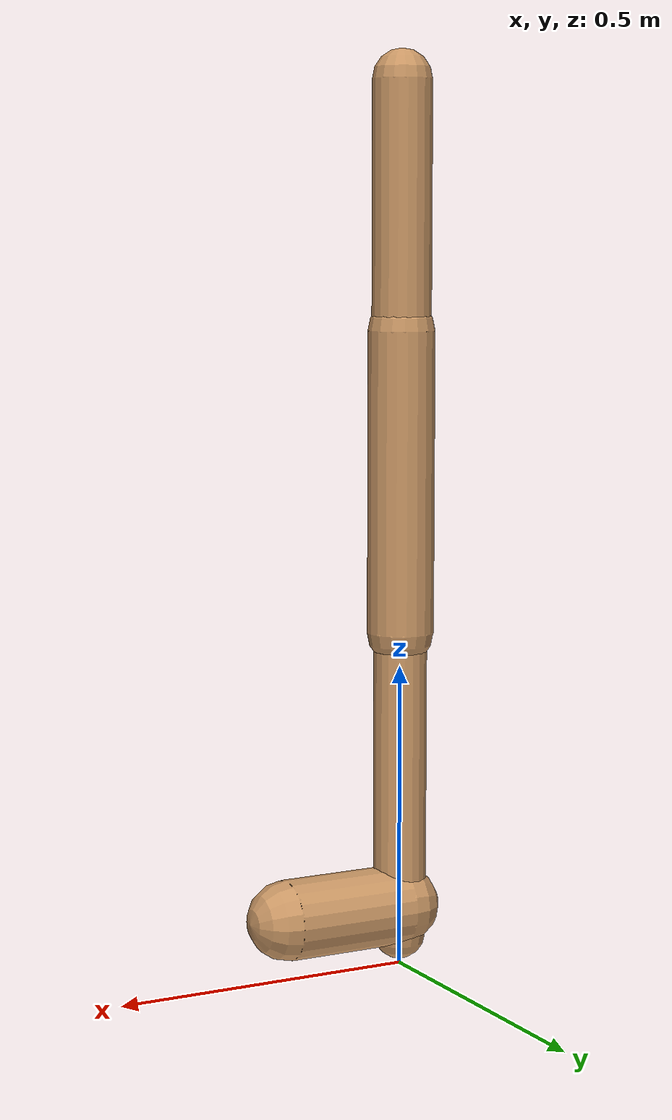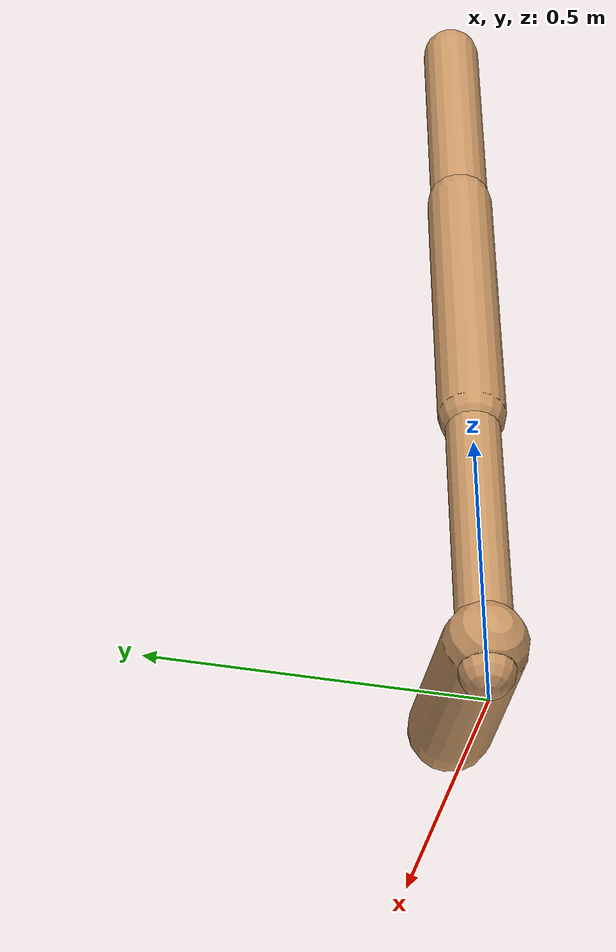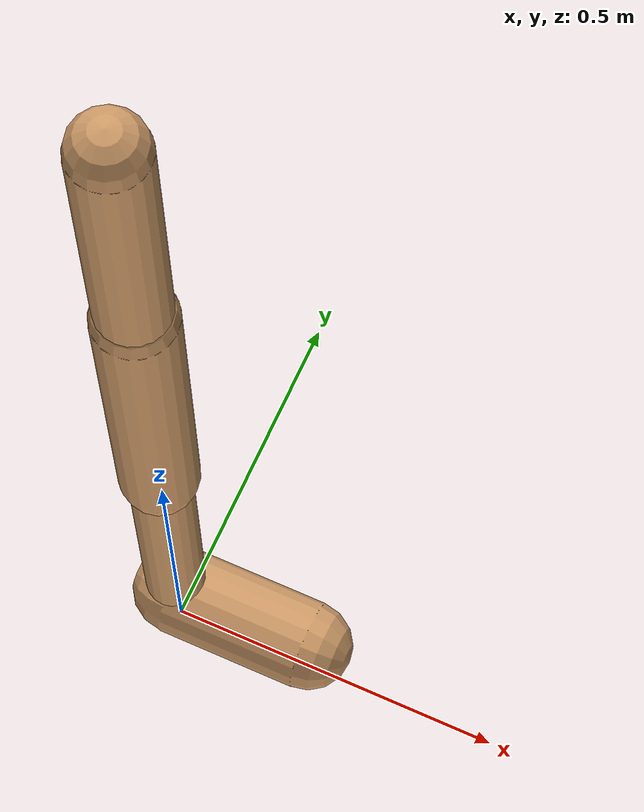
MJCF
<mujoco model="walker2d">
  <compiler angle="degree" coordinate="global" inertiafromgeom="true" />
  <default>
    <joint armature="0.01" damping=".1" limited="true" />
    <geom conaffinity="0" condim="3" contype="1" density="1000" friction="0.8 .1 .1" rgba="0.8 0.6 .4 1" />
  </default>
  <option integrator="RK4" timestep="0.002" />
  <worldbody>

    <body name="torso" pos="0 0 0.08991235250476087">
      <joint armature="0" axis="1 0 0" damping="0" limited="false" name="ignorex" pos="0 0 0" stiffness="0" type="slide" />
      <joint armature="0" axis="0 0 1" damping="0" limited="false" name="ignorez" pos="0 0 0" ref="1.25" stiffness="0" type="slide" />
      <joint armature="0" axis="0 1 0" damping="0" limited="false" name="ignorey" pos="0 0 0" stiffness="0" type="hinge" />
      <geom fromto="0 0 1.45 0 0 1.05" name="torso_geom" size="0.04852681684497703" type="capsule" />
      <body name="thigh">
        <joint axis="0 -1 0" name="thigh_joint" pos="0 0 1.05" range="-150 0" type="hinge" />
        <geom fromto="0.0 0.0 1.05 0.0 0.0 0.5574099382872185" name="thigh_geom" size="0.054610090040732764" type="capsule" />
        <body name="leg" pos="0.0 0.0 -0.04259006171278146">
          <joint axis="0 -1 0" name="leg_joint" pos="0 0 0.6" range="-150 0" type="hinge" />
          <geom fromto="0.0 0.0 0.6 0.0 0.0 0.052677709208020604" name="leg_geom" size="0.04368807203258621" type="capsule" />
          <body name="foot" pos="0.0 0.0 -0.0473222907919794">
            <joint axis="0 -1 0" name="foot_joint" pos="0 0 0.1" range="-45 45" type="hinge" />
            <geom fromto="-0.0 0.0 0.1 0.20909675413630882 0.0 0.1" name="foot_geom" size="0.0653257634360323" type="capsule" />
          </body>
        </body>
      </body>

      <body name="thigh_left">
        <joint axis="0 -1 0" name="thigh_left_joint" pos="0 0 1.05" range="-150 0" type="hinge" />
        <geom fromto="0.0 0.0 1.05 0.0 0.0 0.5574099382872185" name="thigh_left_geom" rgba=".7 .3 .6 1" size="0.054610090040732764" type="capsule" />
        <body name="leg_left" pos="0.0 0.0 -0.04259006171278146">
          <joint axis="0 -1 0" name="leg_left_joint" pos="0 0 0.6" range="-150 0" type="hinge" />
          <geom fromto="0.0 0.0 0.6 0.0 0.0 0.052677709208020604" name="leg_left_geom" rgba=".7 .3 .6 1" size="0.04368807203258621" type="capsule" />
          <body name="foot_left" pos="0.0 0.0 -0.0473222907919794">
            <joint axis="0 -1 0" name="foot_left_joint" pos="0 0 0.1" range="-45 45" type="hinge" />
            <geom fromto="-0.0 0.0 0.1 0.20909675413630882 0.0 0.1" name="foot_left_geom" rgba=".7 .3 .6 1" size="0.0653257634360323" type="capsule" />
          </body>
        </body>
      </body>
    </body>
  </worldbody>
  <actuator>

    <motor ctrllimited="true" ctrlrange="-1.0 1.0" gear="100" joint="thigh_joint" />
    <motor ctrllimited="true" ctrlrange="-1.0 1.0" gear="100" joint="leg_joint" />
    <motor ctrllimited="true" ctrlrange="-1.0 1.0" gear="100" joint="foot_joint" />
    <motor ctrllimited="true" ctrlrange="-1.0 1.0" gear="100" joint="thigh_left_joint" />
    <motor ctrllimited="true" ctrlrange="-1.0 1.0" gear="100" joint="leg_left_joint" />
    <motor ctrllimited="true" ctrlrange="-1.0 1.0" gear="100" joint="foot_left_joint" />

  </actuator>
</mujoco>
